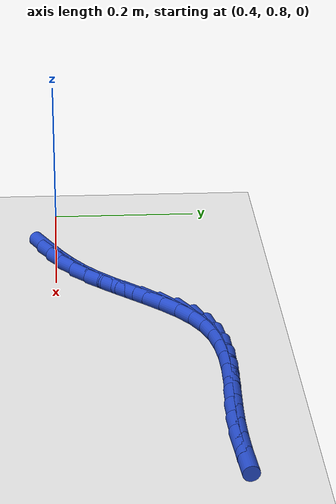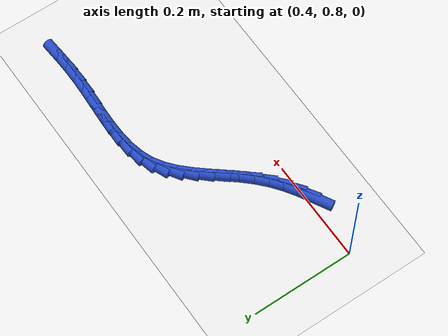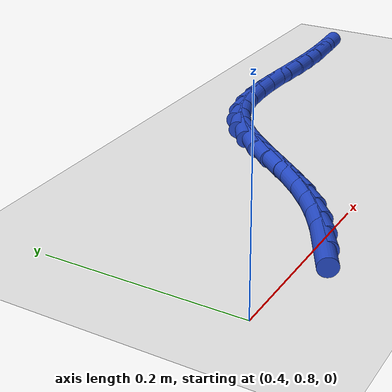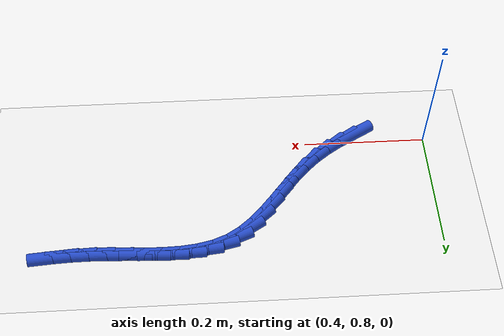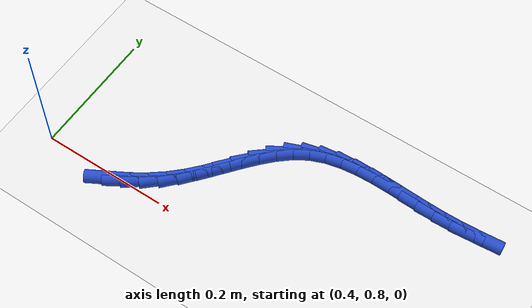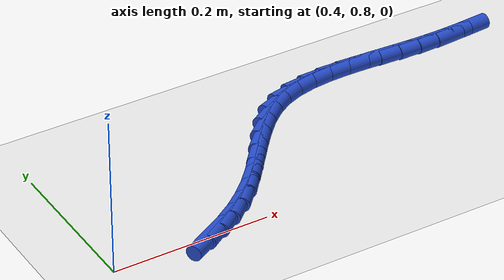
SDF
<sdf version="1.6">
 <world name="default">
  <model name="ground_plane">
   <static>1</static>
   <link name="link">
    <collision name="collision">
     <geometry><plane><normal>0 0 1</normal><size>100 100</size></plane></geometry>
     <surface><friction><ode><mu>100</mu><mu2>50</mu2></ode></friction></surface>
    </collision>
    <visual name="visual">
     <cast_shadows>0</cast_shadows>
     <geometry><plane><normal>0 0 1</normal><size>100 100</size></plane></geometry>
     <material>
      <script><uri>file://media/materials/scripts/gazebo.material</uri><name>Gazebo/WhiteGlow</name></script>
     </material>
    </visual>
   </link>
  </model>
  <model name="line">
   <link name="link_40">
    <pose>0.5217933327562492 0.7914024284126709 0.01 0 1.57 0.5097857412527896</pose>
    <collision name="collision">
     <geometry><cylinder><radius>0.01</radius><length>0.08</length></cylinder></geometry>
    </collision>
    <visual name="visual">
     <material>
      <script><name>Gazebo/Blue</name><uri>file://media/materials/scripts/gazebo.material</uri></script>
     </material>
     <geometry><cylinder><radius>0.01</radius><length>0.08</length></cylinder></geometry>
    </visual>
   </link>
   <link name="link_41">
    <pose>0.5448856192171434 0.8043128051079345 0.01 0 1.57 0.5821589660289005</pose>
    <collision name="collision">
     <geometry><cylinder><radius>0.01</radius><length>0.08</length></cylinder></geometry>
    </collision>
    <visual name="visual">
     <material>
      <script><name>Gazebo/Blue</name><uri>file://media/materials/scripts/gazebo.material</uri></script>
     </material>
     <geometry><cylinder><radius>0.01</radius><length>0.08</length></cylinder></geometry>
    </visual>
   </link>
   <link name="link_42">
    <pose>0.5669514565211606 0.8188378304552729 0.01 0 1.57 0.6625342673406417</pose>
    <collision name="collision">
     <geometry><cylinder><radius>0.01</radius><length>0.08</length></cylinder></geometry>
    </collision>
    <visual name="visual">
     <material>
      <script><name>Gazebo/Blue</name><uri>file://media/materials/scripts/gazebo.material</uri></script>
     </material>
     <geometry><cylinder><radius>0.01</radius><length>0.08</length></cylinder></geometry>
    </visual>
   </link>
   <link name="link_43">
    <pose>0.5878985144840875 0.835180173734987 0.01 0 1.57 0.7493516338687485</pose>
    <collision name="collision">
     <geometry><cylinder><radius>0.01</radius><length>0.08</length></cylinder></geometry>
    </collision>
    <visual name="visual">
     <material>
      <script><name>Gazebo/Blue</name><uri>file://media/materials/scripts/gazebo.material</uri></script>
     </material>
     <geometry><cylinder><radius>0.01</radius><length>0.08</length></cylinder></geometry>
    </visual>
   </link>
   <link name="link_44">
    <pose>0.6076345585165334 0.8535423152832421 0.01 0 1.57 0.8309043963542102</pose>
    <collision name="collision">
     <geometry><cylinder><radius>0.01</radius><length>0.08</length></cylinder></geometry>
    </collision>
    <visual name="visual">
     <material>
      <script><name>Gazebo/Blue</name><uri>file://media/materials/scripts/gazebo.material</uri></script>
     </material>
     <geometry><cylinder><radius>0.01</radius><length>0.08</length></cylinder></geometry>
    </visual>
   </link>
   <link name="link_45">
    <pose>0.6261952074169364 0.8738740319179299 0.01 0 1.57 0.879229027913659</pose>
    <collision name="collision">
     <geometry><cylinder><radius>0.01</radius><length>0.08</length></cylinder></geometry>
    </collision>
    <visual name="visual">
     <material>
      <script><name>Gazebo/Blue</name><uri>file://media/materials/scripts/gazebo.material</uri></script>
     </material>
     <geometry><cylinder><radius>0.01</radius><length>0.08</length></cylinder></geometry>
    </visual>
   </link>
   <link name="link_46">
    <pose>0.6439962974324887 0.8953735968117029 0.01 0 1.57 0.8919594255411456</pose>
    <collision name="collision">
     <geometry><cylinder><radius>0.01</radius><length>0.08</length></cylinder></geometry>
    </collision>
    <visual name="visual">
     <material>
      <script><name>Gazebo/Blue</name><uri>file://media/materials/scripts/gazebo.material</uri></script>
     </material>
     <geometry><cylinder><radius>0.01</radius><length>0.08</length></cylinder></geometry>
    </visual>
   </link>
   <link name="link_47">
    <pose>0.6615240226149033 0.9171002202227106 0.01 0 1.57 0.8696382455518886</pose>
    <collision name="collision">
     <geometry><cylinder><radius>0.01</radius><length>0.08</length></cylinder></geometry>
    </collision>
    <visual name="visual">
     <material>
      <script><name>Gazebo/Blue</name><uri>file://media/materials/scripts/gazebo.material</uri></script>
     </material>
     <geometry><cylinder><radius>0.01</radius><length>0.08</length></cylinder></geometry>
    </visual>
   </link>
   <link name="link_48">
    <pose>0.6792645770158923 0.9381131124091032 0.01 0 1.57 0.8097014040256388</pose>
    <collision name="collision">
     <geometry><cylinder><radius>0.01</radius><length>0.08</length></cylinder></geometry>
    </collision>
    <visual name="visual">
     <material>
      <script><name>Gazebo/Blue</name><uri>file://media/materials/scripts/gazebo.material</uri></script>
     </material>
     <geometry><cylinder><radius>0.01</radius><length>0.08</length></cylinder></geometry>
    </visual>
   </link>
   <link name="link_49">
    <pose>0.6977041546871692 0.9574714836290309 0.01 0 1.57 0.7069143886231135</pose>
    <collision name="collision">
     <geometry><cylinder><radius>0.01</radius><length>0.08</length></cylinder></geometry>
    </collision>
    <visual name="visual">
     <material>
      <script><name>Gazebo/Blue</name><uri>file://media/materials/scripts/gazebo.material</uri></script>
     </material>
     <geometry><cylinder><radius>0.01</radius><length>0.08</length></cylinder></geometry>
    </visual>
   </link>
   <link name="link_50">
    <pose>0.717328949680447 0.974234544140644 0.01 0 1.57 0.5558540827127091</pose>
    <collision name="collision">
     <geometry><cylinder><radius>0.01</radius><length>0.08</length></cylinder></geometry>
    </collision>
    <visual name="visual">
     <material>
      <script><name>Gazebo/Blue</name><uri>file://media/materials/scripts/gazebo.material</uri></script>
     </material>
     <geometry><cylinder><radius>0.01</radius><length>0.08</length></cylinder></geometry>
    </visual>
   </link>
   <link name="link_51">
    <pose>0.7386243958138554 0.9874630397553958 0.01 0 1.57 0.37677194231065686</pose>
    <collision name="collision">
     <geometry><cylinder><radius>0.01</radius><length>0.08</length></cylinder></geometry>
    </collision>
    <visual name="visual">
     <material>
      <script><name>Gazebo/Blue</name><uri>file://media/materials/scripts/gazebo.material</uri></script>
     </material>
     <geometry><cylinder><radius>0.01</radius><length>0.08</length></cylinder></geometry>
    </visual>
   </link>
   <link name="link_52">
    <pose>0.761858790825532 0.9966562973111617 0.01 0 1.57 0.22474269249002612</pose>
    <collision name="collision">
     <geometry><cylinder><radius>0.01</radius><length>0.08</length></cylinder></geometry>
    </collision>
    <visual name="visual">
     <material>
      <script><name>Gazebo/Blue</name><uri>file://media/materials/scripts/gazebo.material</uri></script>
     </material>
     <geometry><cylinder><radius>0.01</radius><length>0.08</length></cylinder></geometry>
    </visual>
   </link>
   <link name="link_53">
    <pose>0.7867850860380194 1.0023545630541533 0.01 0 1.57 0.10963350602497841</pose>
    <collision name="collision">
     <geometry><cylinder><radius>0.01</radius><length>0.08</length></cylinder></geometry>
    </collision>
    <visual name="visual">
     <material>
      <script><name>Gazebo/Blue</name><uri>file://media/materials/scripts/gazebo.material</uri></script>
     </material>
     <geometry><cylinder><radius>0.01</radius><length>0.08</length></cylinder></geometry>
    </visual>
   </link>
   <link name="link_54">
    <pose>0.8130814503490357 1.0052491320688905 0.01 0 1.57 0.028596289146574087</pose>
    <collision name="collision">
     <geometry><cylinder><radius>0.01</radius><length>0.08</length></cylinder></geometry>
    </collision>
    <visual name="visual">
     <material>
      <script><name>Gazebo/Blue</name><uri>file://media/materials/scripts/gazebo.material</uri></script>
     </material>
     <geometry><cylinder><radius>0.01</radius><length>0.08</length></cylinder></geometry>
    </visual>
   </link>
   <link name="link_55">
    <pose>0.8404260526562976 1.0060312994398946 0.01 0 1.57 -0.022757602899486928</pose>
    <collision name="collision">
     <geometry><cylinder><radius>0.01</radius><length>0.08</length></cylinder></geometry>
    </collision>
    <visual name="visual">
     <material>
      <script><name>Gazebo/Blue</name><uri>file://media/materials/scripts/gazebo.material</uri></script>
     </material>
     <geometry><cylinder><radius>0.01</radius><length>0.08</length></cylinder></geometry>
    </visual>
   </link>
   <link name="link_56">
    <pose>0.868497061857523 1.0053923602516865 0.01 0 1.57 -0.048030548358376585</pose>
    <collision name="collision">
     <geometry><cylinder><radius>0.01</radius><length>0.08</length></cylinder></geometry>
    </collision>
    <visual name="visual">
     <material>
      <script><name>Gazebo/Blue</name><uri>file://media/materials/scripts/gazebo.material</uri></script>
     </material>
     <geometry><cylinder><radius>0.01</radius><length>0.08</length></cylinder></geometry>
    </visual>
   </link>
   <link name="link_57">
    <pose>0.8969726468504292 1.0040236095887867 0.01 0 1.57 -0.04923711139930998</pose>
    <collision name="collision">
     <geometry><cylinder><radius>0.01</radius><length>0.08</length></cylinder></geometry>
    </collision>
    <visual name="visual">
     <material>
      <script><name>Gazebo/Blue</name><uri>file://media/materials/scripts/gazebo.material</uri></script>
     </material>
     <geometry><cylinder><radius>0.01</radius><length>0.08</length></cylinder></geometry>
    </visual>
   </link>
   <link name="link_58">
    <pose>0.9255309765327342 1.002616342535716 0.01 0 1.57 -0.026667314538624903</pose>
    <collision name="collision">
     <geometry><cylinder><radius>0.01</radius><length>0.08</length></cylinder></geometry>
    </collision>
    <visual name="visual">
     <material>
      <script><name>Gazebo/Blue</name><uri>file://media/materials/scripts/gazebo.material</uri></script>
     </material>
     <geometry><cylinder><radius>0.01</radius><length>0.08</length></cylinder></geometry>
    </visual>
   </link>
   <link name="link_59">
    <pose>0.953850614978977 1.0018609547575787 0.01 0 1.57 0.012464451421779411</pose>
    <collision name="collision">
     <geometry><cylinder><radius>0.01</radius><length>0.08</length></cylinder></geometry>
    </collision>
    <visual name="visual">
     <material>
      <script><name>Gazebo/Blue</name><uri>file://media/materials/scripts/gazebo.material</uri></script>
     </material>
     <geometry><cylinder><radius>0.01</radius><length>0.08</length></cylinder></geometry>
    </visual>
   </link>
   <link name="link_60">
    <pose>0.9817153771452888 1.0022082917198851 0.01 0 1.57 0.04880122276599813</pose>
    <collision name="collision">
     <geometry><cylinder><radius>0.01</radius><length>0.08</length></cylinder></geometry>
    </collision>
    <visual name="visual">
     <material>
      <script><name>Gazebo/Blue</name><uri>file://media/materials/scripts/gazebo.material</uri></script>
     </material>
     <geometry><cylinder><radius>0.01</radius><length>0.08</length></cylinder></geometry>
    </visual>
   </link>
   <link name="link_61">
    <pose>1.0091554470662898 1.0035484647543063 0.01 0 1.57 0.07896925969057088</pose>
    <collision name="collision">
     <geometry><cylinder><radius>0.01</radius><length>0.08</length></cylinder></geometry>
    </collision>
    <visual name="visual">
     <material>
      <script><name>Gazebo/Blue</name><uri>file://media/materials/scripts/gazebo.material</uri></script>
     </material>
     <geometry><cylinder><radius>0.01</radius><length>0.08</length></cylinder></geometry>
    </visual>
   </link>
  </model>
 </world>
</sdf>
